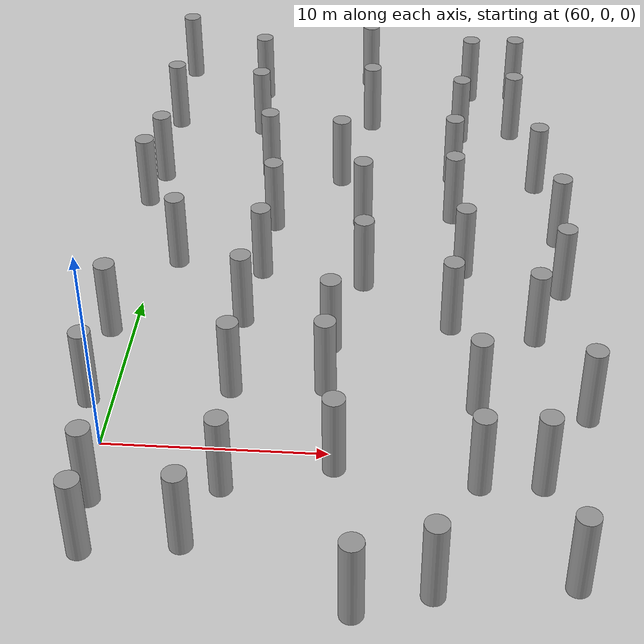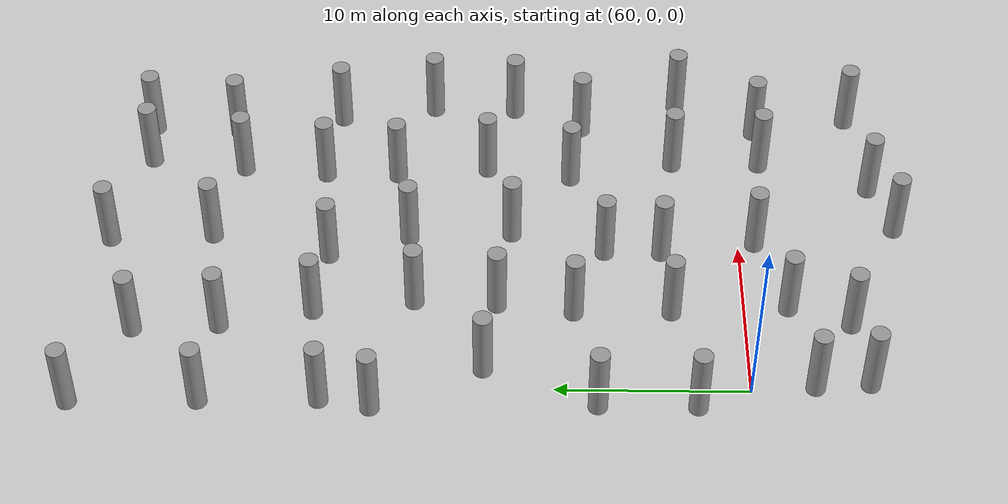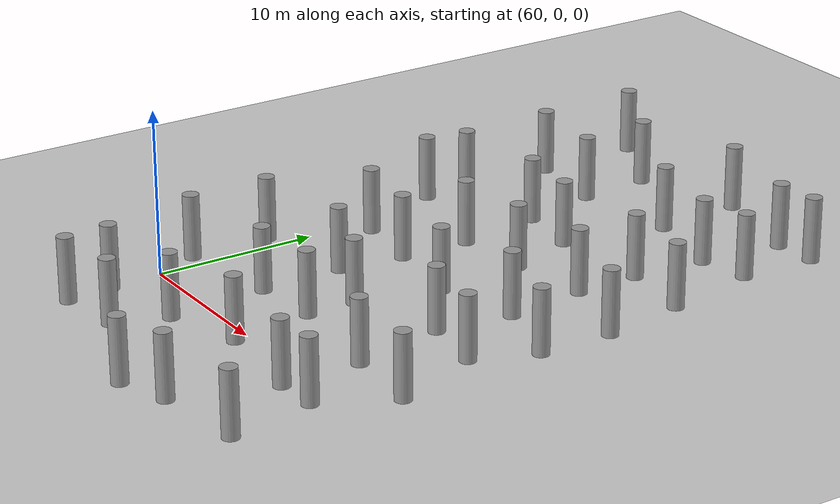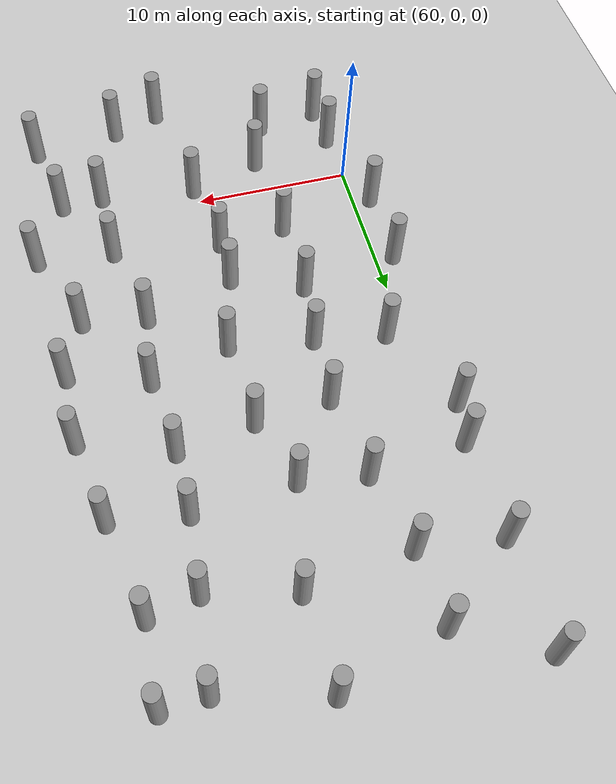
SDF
<sdf version="1.5">
 <world name="circle">
  <model name="ground">
   <static>1</static>
   <link name="link">
    <collision name="collision">
     <geometry><plane><normal>0 0 1</normal><size>100 100</size></plane></geometry>
     <surface><friction><ode><mu>100</mu><mu2>50</mu2></ode></friction></surface>
    </collision>
    <visual name="visual">
     <cast_shadows>0</cast_shadows>
     <geometry><plane><normal>0 0 1</normal><size>100 100</size></plane></geometry>
     <material>
      <script><uri>file://media/materials/scripts/gazebo.material</uri><name>Gazebo/Grey</name></script>
     </material>
    </visual>
    <velocity_decay><linear>0</linear><angular>0</angular></velocity_decay>
   </link>
  </model>
  <model name="unit_cylinder_156">
   <pose>60.4701703593 -6.06975090139 2 3e-06 4e-06 -0</pose>
   <static>1</static>
   <self_collide>1</self_collide>
   <link name="link">
    <inertial>
     <mass>1</mass>
     <inertia><ixx>0.145833</ixx><ixy>0</ixy><ixz>0</ixz><iyy>0.145833</iyy><iyz>0</iyz><izz>0.125</izz></inertia>
    </inertial>
    <collision name="collision">
     <geometry><cylinder><radius>0.5</radius><length>4</length></cylinder></geometry>
    </collision>
    <visual name="visual">
     <geometry><cylinder><radius>0.5</radius><length>4</length></cylinder></geometry>
     <material>
      <script><name>Gazebo/Grey</name><uri>file://media/materials/scripts/gazebo.material</uri></script>
     </material>
    </visual>
    <collision name="cyl_collision">
     <geometry><cylinder><radius>0.5</radius><length>4</length></cylinder></geometry>
    </collision>
    <sensor name="my_contact" type="contact">
     <contact><collision>cyl_collision</collision></contact>
     <update_rate>5</update_rate>
    </sensor>
   </link>
  </model>
  <model name="unit_cylinder_157">
   <pose>60.2379964016 -3.25920357487 2 3e-06 4e-06 -0</pose>
   <static>1</static>
   <self_collide>1</self_collide>
   <link name="link">
    <inertial>
     <mass>1</mass>
     <inertia><ixx>0.145833</ixx><ixy>0</ixy><ixz>0</ixz><iyy>0.145833</iyy><iyz>0</iyz><izz>0.125</izz></inertia>
    </inertial>
    <collision name="collision">
     <geometry><cylinder><radius>0.5</radius><length>4</length></cylinder></geometry>
    </collision>
    <visual name="visual">
     <geometry><cylinder><radius>0.5</radius><length>4</length></cylinder></geometry>
     <material>
      <script><name>Gazebo/Grey</name><uri>file://media/materials/scripts/gazebo.material</uri></script>
     </material>
    </visual>
    <collision name="cyl_collision">
     <geometry><cylinder><radius>0.5</radius><length>4</length></cylinder></geometry>
    </collision>
    <sensor name="my_contact" type="contact">
     <contact><collision>cyl_collision</collision></contact>
     <update_rate>5</update_rate>
    </sensor>
   </link>
  </model>
  <model name="unit_cylinder_158">
   <pose>58.887082655 2.74097271017 2 3e-06 4e-06 -0</pose>
   <static>1</static>
   <self_collide>1</self_collide>
   <link name="link">
    <inertial>
     <mass>1</mass>
     <inertia><ixx>0.145833</ixx><ixy>0</ixy><ixz>0</ixz><iyy>0.145833</iyy><iyz>0</iyz><izz>0.125</izz></inertia>
    </inertial>
    <collision name="collision">
     <geometry><cylinder><radius>0.5</radius><length>4</length></cylinder></geometry>
    </collision>
    <visual name="visual">
     <geometry><cylinder><radius>0.5</radius><length>4</length></cylinder></geometry>
     <material>
      <script><name>Gazebo/Grey</name><uri>file://media/materials/scripts/gazebo.material</uri></script>
     </material>
    </visual>
    <collision name="cyl_collision">
     <geometry><cylinder><radius>0.5</radius><length>4</length></cylinder></geometry>
    </collision>
    <sensor name="my_contact" type="contact">
     <contact><collision>cyl_collision</collision></contact>
     <update_rate>5</update_rate>
    </sensor>
   </link>
  </model>
  <model name="unit_cylinder_159">
   <pose>58.8968987299 7.78600216893 2 3e-06 4e-06 -0</pose>
   <static>1</static>
   <self_collide>1</self_collide>
   <link name="link">
    <inertial>
     <mass>1</mass>
     <inertia><ixx>0.145833</ixx><ixy>0</ixy><ixz>0</ixz><iyy>0.145833</iyy><iyz>0</iyz><izz>0.125</izz></inertia>
    </inertial>
    <collision name="collision">
     <geometry><cylinder><radius>0.5</radius><length>4</length></cylinder></geometry>
    </collision>
    <visual name="visual">
     <geometry><cylinder><radius>0.5</radius><length>4</length></cylinder></geometry>
     <material>
      <script><name>Gazebo/Grey</name><uri>file://media/materials/scripts/gazebo.material</uri></script>
     </material>
    </visual>
    <collision name="cyl_collision">
     <geometry><cylinder><radius>0.5</radius><length>4</length></cylinder></geometry>
    </collision>
    <sensor name="my_contact" type="contact">
     <contact><collision>cyl_collision</collision></contact>
     <update_rate>5</update_rate>
    </sensor>
   </link>
  </model>
  <model name="unit_cylinder_160">
   <pose>61.2322406976 13.5993534009 2 3e-06 4e-06 -0</pose>
   <static>1</static>
   <self_collide>1</self_collide>
   <link name="link">
    <inertial>
     <mass>1</mass>
     <inertia><ixx>0.145833</ixx><ixy>0</ixy><ixz>0</ixz><iyy>0.145833</iyy><iyz>0</iyz><izz>0.125</izz></inertia>
    </inertial>
    <collision name="collision">
     <geometry><cylinder><radius>0.5</radius><length>4</length></cylinder></geometry>
    </collision>
    <visual name="visual">
     <geometry><cylinder><radius>0.5</radius><length>4</length></cylinder></geometry>
     <material>
      <script><name>Gazebo/Grey</name><uri>file://media/materials/scripts/gazebo.material</uri></script>
     </material>
    </visual>
    <collision name="cyl_collision">
     <geometry><cylinder><radius>0.5</radius><length>4</length></cylinder></geometry>
    </collision>
    <sensor name="my_contact" type="contact">
     <contact><collision>cyl_collision</collision></contact>
     <update_rate>5</update_rate>
    </sensor>
   </link>
  </model>
  <model name="unit_cylinder_161">
   <pose>58.6538801805 19.2362191529 2 3e-06 4e-06 -0</pose>
   <static>1</static>
   <self_collide>1</self_collide>
   <link name="link">
    <inertial>
     <mass>1</mass>
     <inertia><ixx>0.145833</ixx><ixy>0</ixy><ixz>0</ixz><iyy>0.145833</iyy><iyz>0</iyz><izz>0.125</izz></inertia>
    </inertial>
    <collision name="collision">
     <geometry><cylinder><radius>0.5</radius><length>4</length></cylinder></geometry>
    </collision>
    <visual name="visual">
     <geometry><cylinder><radius>0.5</radius><length>4</length></cylinder></geometry>
     <material>
      <script><name>Gazebo/Grey</name><uri>file://media/materials/scripts/gazebo.material</uri></script>
     </material>
    </visual>
    <collision name="cyl_collision">
     <geometry><cylinder><radius>0.5</radius><length>4</length></cylinder></geometry>
    </collision>
    <sensor name="my_contact" type="contact">
     <contact><collision>cyl_collision</collision></contact>
     <update_rate>5</update_rate>
    </sensor>
   </link>
  </model>
  <model name="unit_cylinder_162">
   <pose>59.1207464954 21.8424228756 2 3e-06 4e-06 -0</pose>
   <static>1</static>
   <self_collide>1</self_collide>
   <link name="link">
    <inertial>
     <mass>1</mass>
     <inertia><ixx>0.145833</ixx><ixy>0</ixy><ixz>0</ixz><iyy>0.145833</iyy><iyz>0</iyz><izz>0.125</izz></inertia>
    </inertial>
    <collision name="collision">
     <geometry><cylinder><radius>0.5</radius><length>4</length></cylinder></geometry>
    </collision>
    <visual name="visual">
     <geometry><cylinder><radius>0.5</radius><length>4</length></cylinder></geometry>
     <material>
      <script><name>Gazebo/Grey</name><uri>file://media/materials/scripts/gazebo.material</uri></script>
     </material>
    </visual>
    <collision name="cyl_collision">
     <geometry><cylinder><radius>0.5</radius><length>4</length></cylinder></geometry>
    </collision>
    <sensor name="my_contact" type="contact">
     <contact><collision>cyl_collision</collision></contact>
     <update_rate>5</update_rate>
    </sensor>
   </link>
  </model>
  <model name="unit_cylinder_163">
   <pose>58.9823167047 27.9257118297 2 3e-06 4e-06 -0</pose>
   <static>1</static>
   <self_collide>1</self_collide>
   <link name="link">
    <inertial>
     <mass>1</mass>
     <inertia><ixx>0.145833</ixx><ixy>0</ixy><ixz>0</ixz><iyy>0.145833</iyy><iyz>0</iyz><izz>0.125</izz></inertia>
    </inertial>
    <collision name="collision">
     <geometry><cylinder><radius>0.5</radius><length>4</length></cylinder></geometry>
    </collision>
    <visual name="visual">
     <geometry><cylinder><radius>0.5</radius><length>4</length></cylinder></geometry>
     <material>
      <script><name>Gazebo/Grey</name><uri>file://media/materials/scripts/gazebo.material</uri></script>
     </material>
    </visual>
    <collision name="cyl_collision">
     <geometry><cylinder><radius>0.5</radius><length>4</length></cylinder></geometry>
    </collision>
    <sensor name="my_contact" type="contact">
     <contact><collision>cyl_collision</collision></contact>
     <update_rate>5</update_rate>
    </sensor>
   </link>
  </model>
  <model name="unit_cylinder_164">
   <pose>58.8614144761 34.4952171541 2 3e-06 4e-06 -0</pose>
   <static>1</static>
   <self_collide>1</self_collide>
   <link name="link">
    <inertial>
     <mass>1</mass>
     <inertia><ixx>0.145833</ixx><ixy>0</ixy><ixz>0</ixz><iyy>0.145833</iyy><iyz>0</iyz><izz>0.125</izz></inertia>
    </inertial>
    <collision name="collision">
     <geometry><cylinder><radius>0.5</radius><length>4</length></cylinder></geometry>
    </collision>
    <visual name="visual">
     <geometry><cylinder><radius>0.5</radius><length>4</length></cylinder></geometry>
     <material>
      <script><name>Gazebo/Grey</name><uri>file://media/materials/scripts/gazebo.material</uri></script>
     </material>
    </visual>
    <collision name="cyl_collision">
     <geometry><cylinder><radius>0.5</radius><length>4</length></cylinder></geometry>
    </collision>
    <sensor name="my_contact" type="contact">
     <contact><collision>cyl_collision</collision></contact>
     <update_rate>5</update_rate>
    </sensor>
   </link>
  </model>
  <model name="unit_cylinder_171">
   <pose>64.4789815036 -5.50094101185 2 3e-06 4e-06 -0</pose>
   <static>1</static>
   <self_collide>1</self_collide>
   <link name="link">
    <inertial>
     <mass>1</mass>
     <inertia><ixx>0.145833</ixx><ixy>0</ixy><ixz>0</ixz><iyy>0.145833</iyy><iyz>0</iyz><izz>0.125</izz></inertia>
    </inertial>
    <collision name="collision">
     <geometry><cylinder><radius>0.5</radius><length>4</length></cylinder></geometry>
    </collision>
    <visual name="visual">
     <geometry><cylinder><radius>0.5</radius><length>4</length></cylinder></geometry>
     <material>
      <script><name>Gazebo/Grey</name><uri>file://media/materials/scripts/gazebo.material</uri></script>
     </material>
    </visual>
    <collision name="cyl_collision">
     <geometry><cylinder><radius>0.5</radius><length>4</length></cylinder></geometry>
    </collision>
    <sensor name="my_contact" type="contact">
     <contact><collision>cyl_collision</collision></contact>
     <update_rate>5</update_rate>
    </sensor>
   </link>
  </model>
  <model name="unit_cylinder_172">
   <pose>65.6386210565 -2.30949099224 2 3e-06 4e-06 -0</pose>
   <static>1</static>
   <self_collide>1</self_collide>
   <link name="link">
    <inertial>
     <mass>1</mass>
     <inertia><ixx>0.145833</ixx><ixy>0</ixy><ixz>0</ixz><iyy>0.145833</iyy><iyz>0</iyz><izz>0.125</izz></inertia>
    </inertial>
    <collision name="collision">
     <geometry><cylinder><radius>0.5</radius><length>4</length></cylinder></geometry>
    </collision>
    <visual name="visual">
     <geometry><cylinder><radius>0.5</radius><length>4</length></cylinder></geometry>
     <material>
      <script><name>Gazebo/Grey</name><uri>file://media/materials/scripts/gazebo.material</uri></script>
     </material>
    </visual>
    <collision name="cyl_collision">
     <geometry><cylinder><radius>0.5</radius><length>4</length></cylinder></geometry>
    </collision>
    <sensor name="my_contact" type="contact">
     <contact><collision>cyl_collision</collision></contact>
     <update_rate>5</update_rate>
    </sensor>
   </link>
  </model>
  <model name="unit_cylinder_173">
   <pose>65.2575189073 3.81149014294 2 3e-06 4e-06 -0</pose>
   <static>1</static>
   <self_collide>1</self_collide>
   <link name="link">
    <inertial>
     <mass>1</mass>
     <inertia><ixx>0.145833</ixx><ixy>0</ixy><ixz>0</ixz><iyy>0.145833</iyy><iyz>0</iyz><izz>0.125</izz></inertia>
    </inertial>
    <collision name="collision">
     <geometry><cylinder><radius>0.5</radius><length>4</length></cylinder></geometry>
    </collision>
    <visual name="visual">
     <geometry><cylinder><radius>0.5</radius><length>4</length></cylinder></geometry>
     <material>
      <script><name>Gazebo/Grey</name><uri>file://media/materials/scripts/gazebo.material</uri></script>
     </material>
    </visual>
    <collision name="cyl_collision">
     <geometry><cylinder><radius>0.5</radius><length>4</length></cylinder></geometry>
    </collision>
    <sensor name="my_contact" type="contact">
     <contact><collision>cyl_collision</collision></contact>
     <update_rate>5</update_rate>
    </sensor>
   </link>
  </model>
  <model name="unit_cylinder_174">
   <pose>65.1800988588 8.91711277637 2 3e-06 4e-06 -0</pose>
   <static>1</static>
   <self_collide>1</self_collide>
   <link name="link">
    <inertial>
     <mass>1</mass>
     <inertia><ixx>0.145833</ixx><ixy>0</ixy><ixz>0</ixz><iyy>0.145833</iyy><iyz>0</iyz><izz>0.125</izz></inertia>
    </inertial>
    <collision name="collision">
     <geometry><cylinder><radius>0.5</radius><length>4</length></cylinder></geometry>
    </collision>
    <visual name="visual">
     <geometry><cylinder><radius>0.5</radius><length>4</length></cylinder></geometry>
     <material>
      <script><name>Gazebo/Grey</name><uri>file://media/materials/scripts/gazebo.material</uri></script>
     </material>
    </visual>
    <collision name="cyl_collision">
     <geometry><cylinder><radius>0.5</radius><length>4</length></cylinder></geometry>
    </collision>
    <sensor name="my_contact" type="contact">
     <contact><collision>cyl_collision</collision></contact>
     <update_rate>5</update_rate>
    </sensor>
   </link>
  </model>
  <model name="unit_cylinder_175">
   <pose>65.6845530191 12.9363630999 2 3e-06 4e-06 -0</pose>
   <static>1</static>
   <self_collide>1</self_collide>
   <link name="link">
    <inertial>
     <mass>1</mass>
     <inertia><ixx>0.145833</ixx><ixy>0</ixy><ixz>0</ixz><iyy>0.145833</iyy><iyz>0</iyz><izz>0.125</izz></inertia>
    </inertial>
    <collision name="collision">
     <geometry><cylinder><radius>0.5</radius><length>4</length></cylinder></geometry>
    </collision>
    <visual name="visual">
     <geometry><cylinder><radius>0.5</radius><length>4</length></cylinder></geometry>
     <material>
      <script><name>Gazebo/Grey</name><uri>file://media/materials/scripts/gazebo.material</uri></script>
     </material>
    </visual>
    <collision name="cyl_collision">
     <geometry><cylinder><radius>0.5</radius><length>4</length></cylinder></geometry>
    </collision>
    <sensor name="my_contact" type="contact">
     <contact><collision>cyl_collision</collision></contact>
     <update_rate>5</update_rate>
    </sensor>
   </link>
  </model>
  <model name="unit_cylinder_176">
   <pose>65.8643360072 17.2608222089 2 3e-06 4e-06 -0</pose>
   <static>1</static>
   <self_collide>1</self_collide>
   <link name="link">
    <inertial>
     <mass>1</mass>
     <inertia><ixx>0.145833</ixx><ixy>0</ixy><ixz>0</ixz><iyy>0.145833</iyy><iyz>0</iyz><izz>0.125</izz></inertia>
    </inertial>
    <collision name="collision">
     <geometry><cylinder><radius>0.5</radius><length>4</length></cylinder></geometry>
    </collision>
    <visual name="visual">
     <geometry><cylinder><radius>0.5</radius><length>4</length></cylinder></geometry>
     <material>
      <script><name>Gazebo/Grey</name><uri>file://media/materials/scripts/gazebo.material</uri></script>
     </material>
    </visual>
    <collision name="cyl_collision">
     <geometry><cylinder><radius>0.5</radius><length>4</length></cylinder></geometry>
    </collision>
    <sensor name="my_contact" type="contact">
     <contact><collision>cyl_collision</collision></contact>
     <update_rate>5</update_rate>
    </sensor>
   </link>
  </model>
  <model name="unit_cylinder_177">
   <pose>65.1183707322 22.5461258196 2 3e-06 4e-06 -0</pose>
   <static>1</static>
   <self_collide>1</self_collide>
   <link name="link">
    <inertial>
     <mass>1</mass>
     <inertia><ixx>0.145833</ixx><ixy>0</ixy><ixz>0</ixz><iyy>0.145833</iyy><iyz>0</iyz><izz>0.125</izz></inertia>
    </inertial>
    <collision name="collision">
     <geometry><cylinder><radius>0.5</radius><length>4</length></cylinder></geometry>
    </collision>
    <visual name="visual">
     <geometry><cylinder><radius>0.5</radius><length>4</length></cylinder></geometry>
     <material>
      <script><name>Gazebo/Grey</name><uri>file://media/materials/scripts/gazebo.material</uri></script>
     </material>
    </visual>
    <collision name="cyl_collision">
     <geometry><cylinder><radius>0.5</radius><length>4</length></cylinder></geometry>
    </collision>
    <sensor name="my_contact" type="contact">
     <contact><collision>cyl_collision</collision></contact>
     <update_rate>5</update_rate>
    </sensor>
   </link>
  </model>
  <model name="unit_cylinder_178">
   <pose>64.0798336162 27.3781965517 2 3e-06 4e-06 -0</pose>
   <static>1</static>
   <self_collide>1</self_collide>
   <link name="link">
    <inertial>
     <mass>1</mass>
     <inertia><ixx>0.145833</ixx><ixy>0</ixy><ixz>0</ixz><iyy>0.145833</iyy><iyz>0</iyz><izz>0.125</izz></inertia>
    </inertial>
    <collision name="collision">
     <geometry><cylinder><radius>0.5</radius><length>4</length></cylinder></geometry>
    </collision>
    <visual name="visual">
     <geometry><cylinder><radius>0.5</radius><length>4</length></cylinder></geometry>
     <material>
      <script><name>Gazebo/Grey</name><uri>file://media/materials/scripts/gazebo.material</uri></script>
     </material>
    </visual>
    <collision name="cyl_collision">
     <geometry><cylinder><radius>0.5</radius><length>4</length></cylinder></geometry>
    </collision>
    <sensor name="my_contact" type="contact">
     <contact><collision>cyl_collision</collision></contact>
     <update_rate>5</update_rate>
    </sensor>
   </link>
  </model>
  <model name="unit_cylinder_179">
   <pose>63.7785544068 31.8616460499 2 3e-06 4e-06 -0</pose>
   <static>1</static>
   <self_collide>1</self_collide>
   <link name="link">
    <inertial>
     <mass>1</mass>
     <inertia><ixx>0.145833</ixx><ixy>0</ixy><ixz>0</ixz><iyy>0.145833</iyy><iyz>0</iyz><izz>0.125</izz></inertia>
    </inertial>
    <collision name="collision">
     <geometry><cylinder><radius>0.5</radius><length>4</length></cylinder></geometry>
    </collision>
    <visual name="visual">
     <geometry><cylinder><radius>0.5</radius><length>4</length></cylinder></geometry>
     <material>
      <script><name>Gazebo/Grey</name><uri>file://media/materials/scripts/gazebo.material</uri></script>
     </material>
    </visual>
    <collision name="cyl_collision">
     <geometry><cylinder><radius>0.5</radius><length>4</length></cylinder></geometry>
    </collision>
    <sensor name="my_contact" type="contact">
     <contact><collision>cyl_collision</collision></contact>
     <update_rate>5</update_rate>
    </sensor>
   </link>
  </model>
  <model name="unit_cylinder_186">
   <pose>71.4555519409 -8.48425128975 2 3e-06 4e-06 -0</pose>
   <static>1</static>
   <self_collide>1</self_collide>
   <link name="link">
    <inertial>
     <mass>1</mass>
     <inertia><ixx>0.145833</ixx><ixy>0</ixy><ixz>0</ixz><iyy>0.145833</iyy><iyz>0</iyz><izz>0.125</izz></inertia>
    </inertial>
    <collision name="collision">
     <geometry><cylinder><radius>0.5</radius><length>4</length></cylinder></geometry>
    </collision>
    <visual name="visual">
     <geometry><cylinder><radius>0.5</radius><length>4</length></cylinder></geometry>
     <material>
      <script><name>Gazebo/Grey</name><uri>file://media/materials/scripts/gazebo.material</uri></script>
     </material>
    </visual>
    <collision name="cyl_collision">
     <geometry><cylinder><radius>0.5</radius><length>4</length></cylinder></geometry>
    </collision>
    <sensor name="my_contact" type="contact">
     <contact><collision>cyl_collision</collision></contact>
     <update_rate>5</update_rate>
    </sensor>
   </link>
  </model>
  <model name="unit_cylinder_187">
   <pose>70.2824077903 -0.861781208903 2 3e-06 4e-06 -0</pose>
   <static>1</static>
   <self_collide>1</self_collide>
   <link name="link">
    <inertial>
     <mass>1</mass>
     <inertia><ixx>0.145833</ixx><ixy>0</ixy><ixz>0</ixz><iyy>0.145833</iyy><iyz>0</iyz><izz>0.125</izz></inertia>
    </inertial>
    <collision name="collision">
     <geometry><cylinder><radius>0.5</radius><length>4</length></cylinder></geometry>
    </collision>
    <visual name="visual">
     <geometry><cylinder><radius>0.5</radius><length>4</length></cylinder></geometry>
     <material>
      <script><name>Gazebo/Grey</name><uri>file://media/materials/scripts/gazebo.material</uri></script>
     </material>
    </visual>
    <collision name="cyl_collision">
     <geometry><cylinder><radius>0.5</radius><length>4</length></cylinder></geometry>
    </collision>
    <sensor name="my_contact" type="contact">
     <contact><collision>cyl_collision</collision></contact>
     <update_rate>5</update_rate>
    </sensor>
   </link>
  </model>
  <model name="unit_cylinder_188">
   <pose>69.5478955525 4.18038749338 2 3e-06 4e-06 -0</pose>
   <static>1</static>
   <self_collide>1</self_collide>
   <link name="link">
    <inertial>
     <mass>1</mass>
     <inertia><ixx>0.145833</ixx><ixy>0</ixy><ixz>0</ixz><iyy>0.145833</iyy><iyz>0</iyz><izz>0.125</izz></inertia>
    </inertial>
    <collision name="collision">
     <geometry><cylinder><radius>0.5</radius><length>4</length></cylinder></geometry>
    </collision>
    <visual name="visual">
     <geometry><cylinder><radius>0.5</radius><length>4</length></cylinder></geometry>
     <material>
      <script><name>Gazebo/Grey</name><uri>file://media/materials/scripts/gazebo.material</uri></script>
     </material>
    </visual>
    <collision name="cyl_collision">
     <geometry><cylinder><radius>0.5</radius><length>4</length></cylinder></geometry>
    </collision>
    <sensor name="my_contact" type="contact">
     <contact><collision>cyl_collision</collision></contact>
     <update_rate>5</update_rate>
    </sensor>
   </link>
  </model>
  <model name="unit_cylinder_189">
   <pose>69.5836709113 7.21496539493 2 3e-06 4e-06 -0</pose>
   <static>1</static>
   <self_collide>1</self_collide>
   <link name="link">
    <inertial>
     <mass>1</mass>
     <inertia><ixx>0.145833</ixx><ixy>0</ixy><ixz>0</ixz><iyy>0.145833</iyy><iyz>0</iyz><izz>0.125</izz></inertia>
    </inertial>
    <collision name="collision">
     <geometry><cylinder><radius>0.5</radius><length>4</length></cylinder></geometry>
    </collision>
    <visual name="visual">
     <geometry><cylinder><radius>0.5</radius><length>4</length></cylinder></geometry>
     <material>
      <script><name>Gazebo/Grey</name><uri>file://media/materials/scripts/gazebo.material</uri></script>
     </material>
    </visual>
    <collision name="cyl_collision">
     <geometry><cylinder><radius>0.5</radius><length>4</length></cylinder></geometry>
    </collision>
    <sensor name="my_contact" type="contact">
     <contact><collision>cyl_collision</collision></contact>
     <update_rate>5</update_rate>
    </sensor>
   </link>
  </model>
  <model name="unit_cylinder_190">
   <pose>70.8861043625 12.1923184117 2 3e-06 4e-06 -0</pose>
   <static>1</static>
   <self_collide>1</self_collide>
   <link name="link">
    <inertial>
     <mass>1</mass>
     <inertia><ixx>0.145833</ixx><ixy>0</ixy><ixz>0</ixz><iyy>0.145833</iyy><iyz>0</iyz><izz>0.125</izz></inertia>
    </inertial>
    <collision name="collision">
     <geometry><cylinder><radius>0.5</radius><length>4</length></cylinder></geometry>
    </collision>
    <visual name="visual">
     <geometry><cylinder><radius>0.5</radius><length>4</length></cylinder></geometry>
     <material>
      <script><name>Gazebo/Grey</name><uri>file://media/materials/scripts/gazebo.material</uri></script>
     </material>
    </visual>
    <collision name="cyl_collision">
     <geometry><cylinder><radius>0.5</radius><length>4</length></cylinder></geometry>
    </collision>
    <sensor name="my_contact" type="contact">
     <contact><collision>cyl_collision</collision></contact>
     <update_rate>5</update_rate>
    </sensor>
   </link>
  </model>
  <model name="unit_cylinder_191">
   <pose>70.5645354722 17.7104898454 2 3e-06 4e-06 -0</pose>
   <static>1</static>
   <self_collide>1</self_collide>
   <link name="link">
    <inertial>
     <mass>1</mass>
     <inertia><ixx>0.145833</ixx><ixy>0</ixy><ixz>0</ixz><iyy>0.145833</iyy><iyz>0</iyz><izz>0.125</izz></inertia>
    </inertial>
    <collision name="collision">
     <geometry><cylinder><radius>0.5</radius><length>4</length></cylinder></geometry>
    </collision>
    <visual name="visual">
     <geometry><cylinder><radius>0.5</radius><length>4</length></cylinder></geometry>
     <material>
      <script><name>Gazebo/Grey</name><uri>file://media/materials/scripts/gazebo.material</uri></script>
     </material>
    </visual>
    <collision name="cyl_collision">
     <geometry><cylinder><radius>0.5</radius><length>4</length></cylinder></geometry>
    </collision>
    <sensor name="my_contact" type="contact">
     <contact><collision>cyl_collision</collision></contact>
     <update_rate>5</update_rate>
    </sensor>
   </link>
  </model>
  <model name="unit_cylinder_192">
   <pose>69.1609627922 21.971692761 2 3e-06 4e-06 -0</pose>
   <static>1</static>
   <self_collide>1</self_collide>
   <link name="link">
    <inertial>
     <mass>1</mass>
     <inertia><ixx>0.145833</ixx><ixy>0</ixy><ixz>0</ixz><iyy>0.145833</iyy><iyz>0</iyz><izz>0.125</izz></inertia>
    </inertial>
    <collision name="collision">
     <geometry><cylinder><radius>0.5</radius><length>4</length></cylinder></geometry>
    </collision>
    <visual name="visual">
     <geometry><cylinder><radius>0.5</radius><length>4</length></cylinder></geometry>
     <material>
      <script><name>Gazebo/Grey</name><uri>file://media/materials/scripts/gazebo.material</uri></script>
     </material>
    </visual>
    <collision name="cyl_collision">
     <geometry><cylinder><radius>0.5</radius><length>4</length></cylinder></geometry>
    </collision>
    <sensor name="my_contact" type="contact">
     <contact><collision>cyl_collision</collision></contact>
     <update_rate>5</update_rate>
    </sensor>
   </link>
  </model>
  <model name="unit_cylinder_193">
   <pose>70.5955600186 28.3232675022 2 3e-06 4e-06 -0</pose>
   <static>1</static>
   <self_collide>1</self_collide>
   <link name="link">
    <inertial>
     <mass>1</mass>
     <inertia><ixx>0.145833</ixx><ixy>0</ixy><ixz>0</ixz><iyy>0.145833</iyy><iyz>0</iyz><izz>0.125</izz></inertia>
    </inertial>
    <collision name="collision">
     <geometry><cylinder><radius>0.5</radius><length>4</length></cylinder></geometry>
    </collision>
    <visual name="visual">
     <geometry><cylinder><radius>0.5</radius><length>4</length></cylinder></geometry>
     <material>
      <script><name>Gazebo/Grey</name><uri>file://media/materials/scripts/gazebo.material</uri></script>
     </material>
    </visual>
    <collision name="cyl_collision">
     <geometry><cylinder><radius>0.5</radius><length>4</length></cylinder></geometry>
    </collision>
    <sensor name="my_contact" type="contact">
     <contact><collision>cyl_collision</collision></contact>
     <update_rate>5</update_rate>
    </sensor>
   </link>
  </model>
  <model name="unit_cylinder_194">
   <pose>70.2686210708 33.8437211212 2 3e-06 4e-06 -0</pose>
   <static>1</static>
   <self_collide>1</self_collide>
   <link name="link">
    <inertial>
     <mass>1</mass>
     <inertia><ixx>0.145833</ixx><ixy>0</ixy><ixz>0</ixz><iyy>0.145833</iyy><iyz>0</iyz><izz>0.125</izz></inertia>
    </inertial>
    <collision name="collision">
     <geometry><cylinder><radius>0.5</radius><length>4</length></cylinder></geometry>
    </collision>
    <visual name="visual">
     <geometry><cylinder><radius>0.5</radius><length>4</length></cylinder></geometry>
     <material>
      <script><name>Gazebo/Grey</name><uri>file://media/materials/scripts/gazebo.material</uri></script>
     </material>
    </visual>
    <collision name="cyl_collision">
     <geometry><cylinder><radius>0.5</radius><length>4</length></cylinder></geometry>
    </collision>
    <sensor name="my_contact" type="contact">
     <contact><collision>cyl_collision</collision></contact>
     <update_rate>5</update_rate>
    </sensor>
   </link>
  </model>
  <model name="unit_cylinder_201">
   <pose>74.5408803391 -7.41613589148 2 3e-06 4e-06 -0</pose>
   <static>1</static>
   <self_collide>1</self_collide>
   <link name="link">
    <inertial>
     <mass>1</mass>
     <inertia><ixx>0.145833</ixx><ixy>0</ixy><ixz>0</ixz><iyy>0.145833</iyy><iyz>0</iyz><izz>0.125</izz></inertia>
    </inertial>
    <collision name="collision">
     <geometry><cylinder><radius>0.5</radius><length>4</length></cylinder></geometry>
    </collision>
    <visual name="visual">
     <geometry><cylinder><radius>0.5</radius><length>4</length></cylinder></geometry>
     <material>
      <script><name>Gazebo/Grey</name><uri>file://media/materials/scripts/gazebo.material</uri></script>
     </material>
    </visual>
    <collision name="cyl_collision">
     <geometry><cylinder><radius>0.5</radius><length>4</length></cylinder></geometry>
    </collision>
    <sensor name="my_contact" type="contact">
     <contact><collision>cyl_collision</collision></contact>
     <update_rate>5</update_rate>
    </sensor>
   </link>
  </model>
  <model name="unit_cylinder_202">
   <pose>76.4392110149 -1.53844227767 2 3e-06 4e-06 -0</pose>
   <static>1</static>
   <self_collide>1</self_collide>
   <link name="link">
    <inertial>
     <mass>1</mass>
     <inertia><ixx>0.145833</ixx><ixy>0</ixy><ixz>0</ixz><iyy>0.145833</iyy><iyz>0</iyz><izz>0.125</izz></inertia>
    </inertial>
    <collision name="collision">
     <geometry><cylinder><radius>0.5</radius><length>4</length></cylinder></geometry>
    </collision>
    <visual name="visual">
     <geometry><cylinder><radius>0.5</radius><length>4</length></cylinder></geometry>
     <material>
      <script><name>Gazebo/Grey</name><uri>file://media/materials/scripts/gazebo.material</uri></script>
     </material>
    </visual>
    <collision name="cyl_collision">
     <geometry><cylinder><radius>0.5</radius><length>4</length></cylinder></geometry>
    </collision>
    <sensor name="my_contact" type="contact">
     <contact><collision>cyl_collision</collision></contact>
     <update_rate>5</update_rate>
    </sensor>
   </link>
  </model>
  <model name="unit_cylinder_203">
   <pose>76.4469761786 3.29534706042 2 3e-06 4e-06 -0</pose>
   <static>1</static>
   <self_collide>1</self_collide>
   <link name="link">
    <inertial>
     <mass>1</mass>
     <inertia><ixx>0.145833</ixx><ixy>0</ixy><ixz>0</ixz><iyy>0.145833</iyy><iyz>0</iyz><izz>0.125</izz></inertia>
    </inertial>
    <collision name="collision">
     <geometry><cylinder><radius>0.5</radius><length>4</length></cylinder></geometry>
    </collision>
    <visual name="visual">
     <geometry><cylinder><radius>0.5</radius><length>4</length></cylinder></geometry>
     <material>
      <script><name>Gazebo/Grey</name><uri>file://media/materials/scripts/gazebo.material</uri></script>
     </material>
    </visual>
    <collision name="cyl_collision">
     <geometry><cylinder><radius>0.5</radius><length>4</length></cylinder></geometry>
    </collision>
    <sensor name="my_contact" type="contact">
     <contact><collision>cyl_collision</collision></contact>
     <update_rate>5</update_rate>
    </sensor>
   </link>
  </model>
  <model name="unit_cylinder_204">
   <pose>75.2714287233 8.97474514771 2 3e-06 4e-06 -0</pose>
   <static>1</static>
   <self_collide>1</self_collide>
   <link name="link">
    <inertial>
     <mass>1</mass>
     <inertia><ixx>0.145833</ixx><ixy>0</ixy><ixz>0</ixz><iyy>0.145833</iyy><iyz>0</iyz><izz>0.125</izz></inertia>
    </inertial>
    <collision name="collision">
     <geometry><cylinder><radius>0.5</radius><length>4</length></cylinder></geometry>
    </collision>
    <visual name="visual">
     <geometry><cylinder><radius>0.5</radius><length>4</length></cylinder></geometry>
     <material>
      <script><name>Gazebo/Grey</name><uri>file://media/materials/scripts/gazebo.material</uri></script>
     </material>
    </visual>
    <collision name="cyl_collision">
     <geometry><cylinder><radius>0.5</radius><length>4</length></cylinder></geometry>
    </collision>
    <sensor name="my_contact" type="contact">
     <contact><collision>cyl_collision</collision></contact>
     <update_rate>5</update_rate>
    </sensor>
   </link>
  </model>
  <model name="unit_cylinder_205">
   <pose>75.9020235521 13.5685429544 2 3e-06 4e-06 -0</pose>
   <static>1</static>
   <self_collide>1</self_collide>
   <link name="link">
    <inertial>
     <mass>1</mass>
     <inertia><ixx>0.145833</ixx><ixy>0</ixy><ixz>0</ixz><iyy>0.145833</iyy><iyz>0</iyz><izz>0.125</izz></inertia>
    </inertial>
    <collision name="collision">
     <geometry><cylinder><radius>0.5</radius><length>4</length></cylinder></geometry>
    </collision>
    <visual name="visual">
     <geometry><cylinder><radius>0.5</radius><length>4</length></cylinder></geometry>
     <material>
      <script><name>Gazebo/Grey</name><uri>file://media/materials/scripts/gazebo.material</uri></script>
     </material>
    </visual>
    <collision name="cyl_collision">
     <geometry><cylinder><radius>0.5</radius><length>4</length></cylinder></geometry>
    </collision>
    <sensor name="my_contact" type="contact">
     <contact><collision>cyl_collision</collision></contact>
     <update_rate>5</update_rate>
    </sensor>
   </link>
  </model>
  <model name="unit_cylinder_206">
   <pose>75.3957853132 18.5356385264 2 3e-06 4e-06 -0</pose>
   <static>1</static>
   <self_collide>1</self_collide>
   <link name="link">
    <inertial>
     <mass>1</mass>
     <inertia><ixx>0.145833</ixx><ixy>0</ixy><ixz>0</ixz><iyy>0.145833</iyy><iyz>0</iyz><izz>0.125</izz></inertia>
    </inertial>
    <collision name="collision">
     <geometry><cylinder><radius>0.5</radius><length>4</length></cylinder></geometry>
    </collision>
    <visual name="visual">
     <geometry><cylinder><radius>0.5</radius><length>4</length></cylinder></geometry>
     <material>
      <script><name>Gazebo/Grey</name><uri>file://media/materials/scripts/gazebo.material</uri></script>
     </material>
    </visual>
    <collision name="cyl_collision">
     <geometry><cylinder><radius>0.5</radius><length>4</length></cylinder></geometry>
    </collision>
    <sensor name="my_contact" type="contact">
     <contact><collision>cyl_collision</collision></contact>
     <update_rate>5</update_rate>
    </sensor>
   </link>
  </model>
  <model name="unit_cylinder_207">
   <pose>75.4082340196 22.5073117622 2 3e-06 4e-06 -0</pose>
   <static>1</static>
   <self_collide>1</self_collide>
   <link name="link">
    <inertial>
     <mass>1</mass>
     <inertia><ixx>0.145833</ixx><ixy>0</ixy><ixz>0</ixz><iyy>0.145833</iyy><iyz>0</iyz><izz>0.125</izz></inertia>
    </inertial>
    <collision name="collision">
     <geometry><cylinder><radius>0.5</radius><length>4</length></cylinder></geometry>
    </collision>
    <visual name="visual">
     <geometry><cylinder><radius>0.5</radius><length>4</length></cylinder></geometry>
     <material>
      <script><name>Gazebo/Grey</name><uri>file://media/materials/scripts/gazebo.material</uri></script>
     </material>
    </visual>
    <collision name="cyl_collision">
     <geometry><cylinder><radius>0.5</radius><length>4</length></cylinder></geometry>
    </collision>
    <sensor name="my_contact" type="contact">
     <contact><collision>cyl_collision</collision></contact>
     <update_rate>5</update_rate>
    </sensor>
   </link>
  </model>
  <model name="unit_cylinder_208">
   <pose>75.8336901796 27.0928492601 2 3e-06 4e-06 -0</pose>
   <static>1</static>
   <self_collide>1</self_collide>
   <link name="link">
    <inertial>
     <mass>1</mass>
     <inertia><ixx>0.145833</ixx><ixy>0</ixy><ixz>0</ixz><iyy>0.145833</iyy><iyz>0</iyz><izz>0.125</izz></inertia>
    </inertial>
    <collision name="collision">
     <geometry><cylinder><radius>0.5</radius><length>4</length></cylinder></geometry>
    </collision>
    <visual name="visual">
     <geometry><cylinder><radius>0.5</radius><length>4</length></cylinder></geometry>
     <material>
      <script><name>Gazebo/Grey</name><uri>file://media/materials/scripts/gazebo.material</uri></script>
     </material>
    </visual>
    <collision name="cyl_collision">
     <geometry><cylinder><radius>0.5</radius><length>4</length></cylinder></geometry>
    </collision>
    <sensor name="my_contact" type="contact">
     <contact><collision>cyl_collision</collision></contact>
     <update_rate>5</update_rate>
    </sensor>
   </link>
  </model>
  <model name="unit_cylinder_209">
   <pose>76.4768444707 32.3048585835 2 3e-06 4e-06 -0</pose>
   <static>1</static>
   <self_collide>1</self_collide>
   <link name="link">
    <inertial>
     <mass>1</mass>
     <inertia><ixx>0.145833</ixx><ixy>0</ixy><ixz>0</ixz><iyy>0.145833</iyy><iyz>0</iyz><izz>0.125</izz></inertia>
    </inertial>
    <collision name="collision">
     <geometry><cylinder><radius>0.5</radius><length>4</length></cylinder></geometry>
    </collision>
    <visual name="visual">
     <geometry><cylinder><radius>0.5</radius><length>4</length></cylinder></geometry>
     <material>
      <script><name>Gazebo/Grey</name><uri>file://media/materials/scripts/gazebo.material</uri></script>
     </material>
    </visual>
    <collision name="cyl_collision">
     <geometry><cylinder><radius>0.5</radius><length>4</length></cylinder></geometry>
    </collision>
    <sensor name="my_contact" type="contact">
     <contact><collision>cyl_collision</collision></contact>
     <update_rate>5</update_rate>
    </sensor>
   </link>
  </model>
  <model name="unit_cylinder_216">
   <pose>80.1273078171 -6.68280459797 2 3e-06 4e-06 -0</pose>
   <static>1</static>
   <self_collide>1</self_collide>
   <link name="link">
    <inertial>
     <mass>1</mass>
     <inertia><ixx>0.145833</ixx><ixy>0</ixy><ixz>0</ixz><iyy>0.145833</iyy><iyz>0</iyz><izz>0.125</izz></inertia>
    </inertial>
    <collision name="collision">
     <geometry><cylinder><radius>0.5</radius><length>4</length></cylinder></geometry>
    </collision>
    <visual name="visual">
     <geometry><cylinder><radius>0.5</radius><length>4</length></cylinder></geometry>
     <material>
      <script><name>Gazebo/Grey</name><uri>file://media/materials/scripts/gazebo.material</uri></script>
     </material>
    </visual>
    <collision name="cyl_collision">
     <geometry><cylinder><radius>0.5</radius><length>4</length></cylinder></geometry>
    </collision>
    <sensor name="my_contact" type="contact">
     <contact><collision>cyl_collision</collision></contact>
     <update_rate>5</update_rate>
    </sensor>
   </link>
  </model>
  <model name="unit_cylinder_217">
   <pose>79.1166475007 -1.41133623398 2 3e-06 4e-06 -0</pose>
   <static>1</static>
   <self_collide>1</self_collide>
   <link name="link">
    <inertial>
     <mass>1</mass>
     <inertia><ixx>0.145833</ixx><ixy>0</ixy><ixz>0</ixz><iyy>0.145833</iyy><iyz>0</iyz><izz>0.125</izz></inertia>
    </inertial>
    <collision name="collision">
     <geometry><cylinder><radius>0.5</radius><length>4</length></cylinder></geometry>
    </collision>
    <visual name="visual">
     <geometry><cylinder><radius>0.5</radius><length>4</length></cylinder></geometry>
     <material>
      <script><name>Gazebo/Grey</name><uri>file://media/materials/scripts/gazebo.material</uri></script>
     </material>
    </visual>
    <collision name="cyl_collision">
     <geometry><cylinder><radius>0.5</radius><length>4</length></cylinder></geometry>
    </collision>
    <sensor name="my_contact" type="contact">
     <contact><collision>cyl_collision</collision></contact>
     <update_rate>5</update_rate>
    </sensor>
   </link>
  </model>
  <model name="unit_cylinder_218">
   <pose>81.3474477866 2.89445532824 2 3e-06 4e-06 -0</pose>
   <static>1</static>
   <self_collide>1</self_collide>
   <link name="link">
    <inertial>
     <mass>1</mass>
     <inertia><ixx>0.145833</ixx><ixy>0</ixy><ixz>0</ixz><iyy>0.145833</iyy><iyz>0</iyz><izz>0.125</izz></inertia>
    </inertial>
    <collision name="collision">
     <geometry><cylinder><radius>0.5</radius><length>4</length></cylinder></geometry>
    </collision>
    <visual name="visual">
     <geometry><cylinder><radius>0.5</radius><length>4</length></cylinder></geometry>
     <material>
      <script><name>Gazebo/Grey</name><uri>file://media/materials/scripts/gazebo.material</uri></script>
     </material>
    </visual>
    <collision name="cyl_collision">
     <geometry><cylinder><radius>0.5</radius><length>4</length></cylinder></geometry>
    </collision>
    <sensor name="my_contact" type="contact">
     <contact><collision>cyl_collision</collision></contact>
     <update_rate>5</update_rate>
    </sensor>
   </link>
  </model>
  <model name="unit_cylinder_219">
   <pose>79.2908069921 8.32962363431 2 3e-06 4e-06 -0</pose>
   <static>1</static>
   <self_collide>1</self_collide>
   <link name="link">
    <inertial>
     <mass>1</mass>
     <inertia><ixx>0.145833</ixx><ixy>0</ixy><ixz>0</ixz><iyy>0.145833</iyy><iyz>0</iyz><izz>0.125</izz></inertia>
    </inertial>
    <collision name="collision">
     <geometry><cylinder><radius>0.5</radius><length>4</length></cylinder></geometry>
    </collision>
    <visual name="visual">
     <geometry><cylinder><radius>0.5</radius><length>4</length></cylinder></geometry>
     <material>
      <script><name>Gazebo/Grey</name><uri>file://media/materials/scripts/gazebo.material</uri></script>
     </material>
    </visual>
    <collision name="cyl_collision">
     <geometry><cylinder><radius>0.5</radius><length>4</length></cylinder></geometry>
    </collision>
    <sensor name="my_contact" type="contact">
     <contact><collision>cyl_collision</collision></contact>
     <update_rate>5</update_rate>
    </sensor>
   </link>
  </model>
  <model name="unit_cylinder_220">
   <pose>80.7884324752 12.0780535129 2 3e-06 4e-06 -0</pose>
   <static>1</static>
   <self_collide>1</self_collide>
   <link name="link">
    <inertial>
     <mass>1</mass>
     <inertia><ixx>0.145833</ixx><ixy>0</ixy><ixz>0</ixz><iyy>0.145833</iyy><iyz>0</iyz><izz>0.125</izz></inertia>
    </inertial>
    <collision name="collision">
     <geometry><cylinder><radius>0.5</radius><length>4</length></cylinder></geometry>
    </collision>
    <visual name="visual">
     <geometry><cylinder><radius>0.5</radius><length>4</length></cylinder></geometry>
     <material>
      <script><name>Gazebo/Grey</name><uri>file://media/materials/scripts/gazebo.material</uri></script>
     </material>
    </visual>
    <collision name="cyl_collision">
     <geometry><cylinder><radius>0.5</radius><length>4</length></cylinder></geometry>
    </collision>
    <sensor name="my_contact" type="contact">
     <contact><collision>cyl_collision</collision></contact>
     <update_rate>5</update_rate>
    </sensor>
   </link>
  </model>
  <model name="unit_cylinder_221">
   <pose>80.8938777271 16.6343314793 2 3e-06 4e-06 -0</pose>
   <static>1</static>
   <self_collide>1</self_collide>
   <link name="link">
    <inertial>
     <mass>1</mass>
     <inertia><ixx>0.145833</ixx><ixy>0</ixy><ixz>0</ixz><iyy>0.145833</iyy><iyz>0</iyz><izz>0.125</izz></inertia>
    </inertial>
    <collision name="collision">
     <geometry><cylinder><radius>0.5</radius><length>4</length></cylinder></geometry>
    </collision>
    <visual name="visual">
     <geometry><cylinder><radius>0.5</radius><length>4</length></cylinder></geometry>
     <material>
      <script><name>Gazebo/Grey</name><uri>file://media/materials/scripts/gazebo.material</uri></script>
     </material>
    </visual>
    <collision name="cyl_collision">
     <geometry><cylinder><radius>0.5</radius><length>4</length></cylinder></geometry>
    </collision>
    <sensor name="my_contact" type="contact">
     <contact><collision>cyl_collision</collision></contact>
     <update_rate>5</update_rate>
    </sensor>
   </link>
  </model>
  <model name="unit_cylinder_222">
   <pose>80.0151721283 21.8568224074 2 3e-06 4e-06 -0</pose>
   <static>1</static>
   <self_collide>1</self_collide>
   <link name="link">
    <inertial>
     <mass>1</mass>
     <inertia><ixx>0.145833</ixx><ixy>0</ixy><ixz>0</ixz><iyy>0.145833</iyy><iyz>0</iyz><izz>0.125</izz></inertia>
    </inertial>
    <collision name="collision">
     <geometry><cylinder><radius>0.5</radius><length>4</length></cylinder></geometry>
    </collision>
    <visual name="visual">
     <geometry><cylinder><radius>0.5</radius><length>4</length></cylinder></geometry>
     <material>
      <script><name>Gazebo/Grey</name><uri>file://media/materials/scripts/gazebo.material</uri></script>
     </material>
    </visual>
    <collision name="cyl_collision">
     <geometry><cylinder><radius>0.5</radius><length>4</length></cylinder></geometry>
    </collision>
    <sensor name="my_contact" type="contact">
     <contact><collision>cyl_collision</collision></contact>
     <update_rate>5</update_rate>
    </sensor>
   </link>
  </model>
  <model name="unit_cylinder_223">
   <pose>78.8758337775 27.7160070677 2 3e-06 4e-06 -0</pose>
   <static>1</static>
   <self_collide>1</self_collide>
   <link name="link">
    <inertial>
     <mass>1</mass>
     <inertia><ixx>0.145833</ixx><ixy>0</ixy><ixz>0</ixz><iyy>0.145833</iyy><iyz>0</iyz><izz>0.125</izz></inertia>
    </inertial>
    <collision name="collision">
     <geometry><cylinder><radius>0.5</radius><length>4</length></cylinder></geometry>
    </collision>
    <visual name="visual">
     <geometry><cylinder><radius>0.5</radius><length>4</length></cylinder></geometry>
     <material>
      <script><name>Gazebo/Grey</name><uri>file://media/materials/scripts/gazebo.material</uri></script>
     </material>
    </visual>
    <collision name="cyl_collision">
     <geometry><cylinder><radius>0.5</radius><length>4</length></cylinder></geometry>
    </collision>
    <sensor name="my_contact" type="contact">
     <contact><collision>cyl_collision</collision></contact>
     <update_rate>5</update_rate>
    </sensor>
   </link>
  </model>
  <model name="unit_cylinder_224">
   <pose>79.1476454396 32.4793898725 2 3e-06 4e-06 -0</pose>
   <static>1</static>
   <self_collide>1</self_collide>
   <link name="link">
    <inertial>
     <mass>1</mass>
     <inertia><ixx>0.145833</ixx><ixy>0</ixy><ixz>0</ixz><iyy>0.145833</iyy><iyz>0</iyz><izz>0.125</izz></inertia>
    </inertial>
    <collision name="collision">
     <geometry><cylinder><radius>0.5</radius><length>4</length></cylinder></geometry>
    </collision>
    <visual name="visual">
     <geometry><cylinder><radius>0.5</radius><length>4</length></cylinder></geometry>
     <material>
      <script><name>Gazebo/Grey</name><uri>file://media/materials/scripts/gazebo.material</uri></script>
     </material>
    </visual>
    <collision name="cyl_collision">
     <geometry><cylinder><radius>0.5</radius><length>4</length></cylinder></geometry>
    </collision>
    <sensor name="my_contact" type="contact">
     <contact><collision>cyl_collision</collision></contact>
     <update_rate>5</update_rate>
    </sensor>
   </link>
  </model>
 </world>
</sdf>
